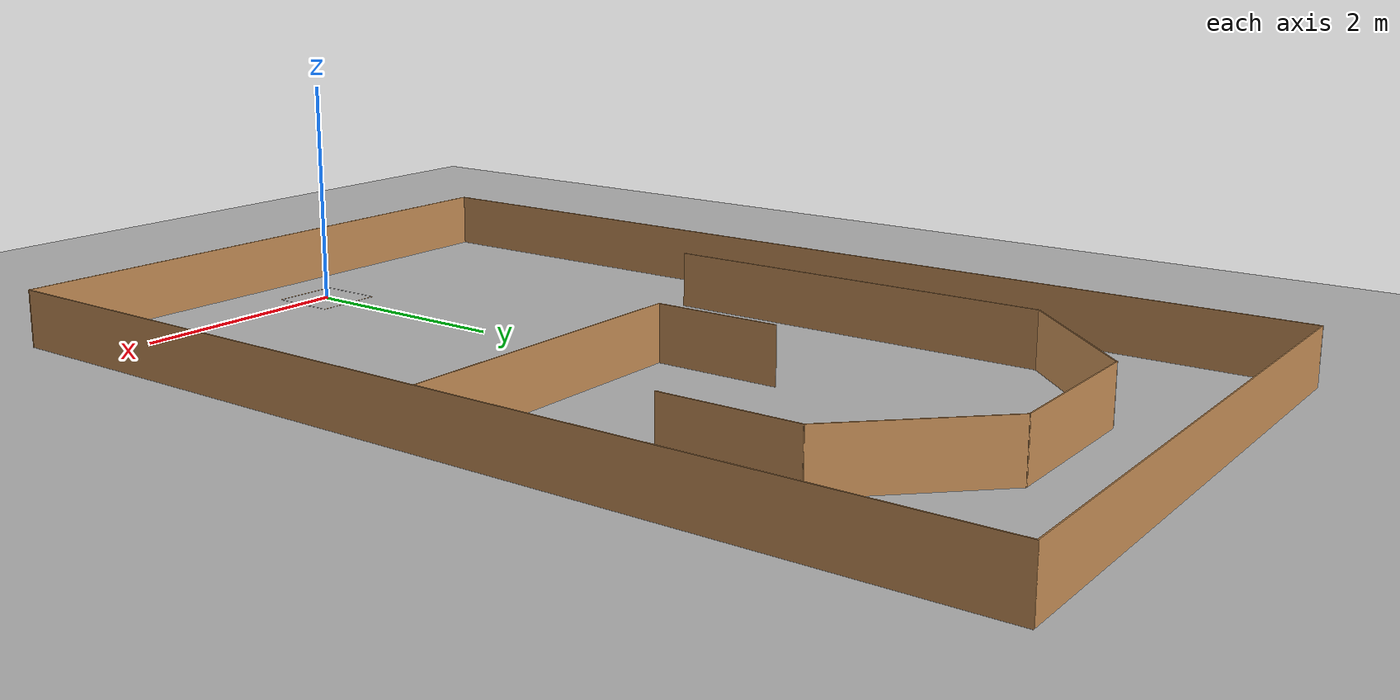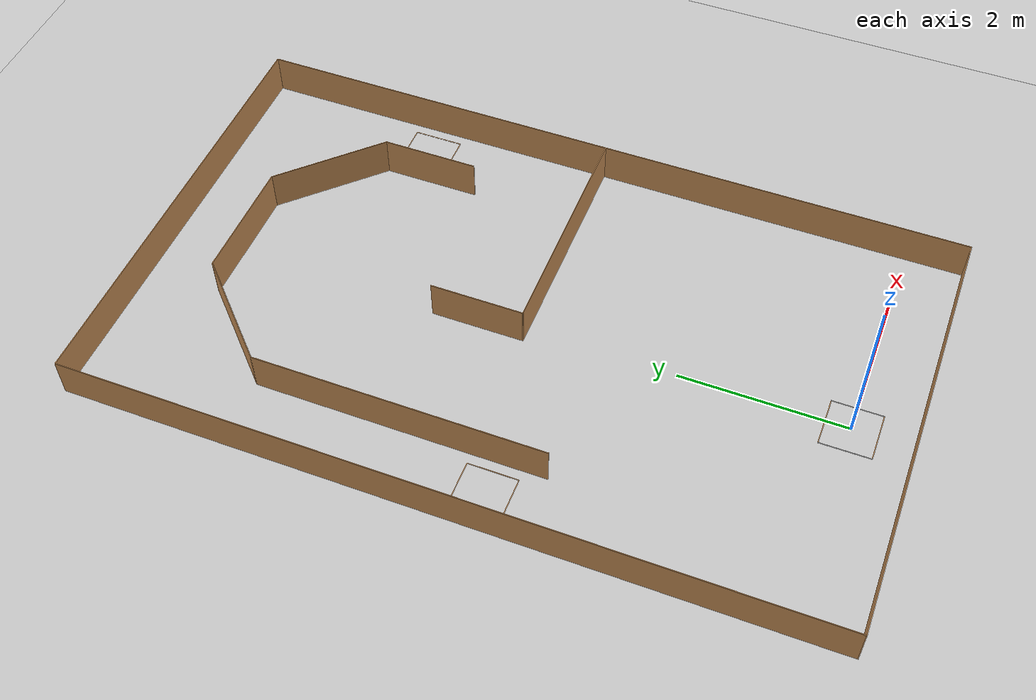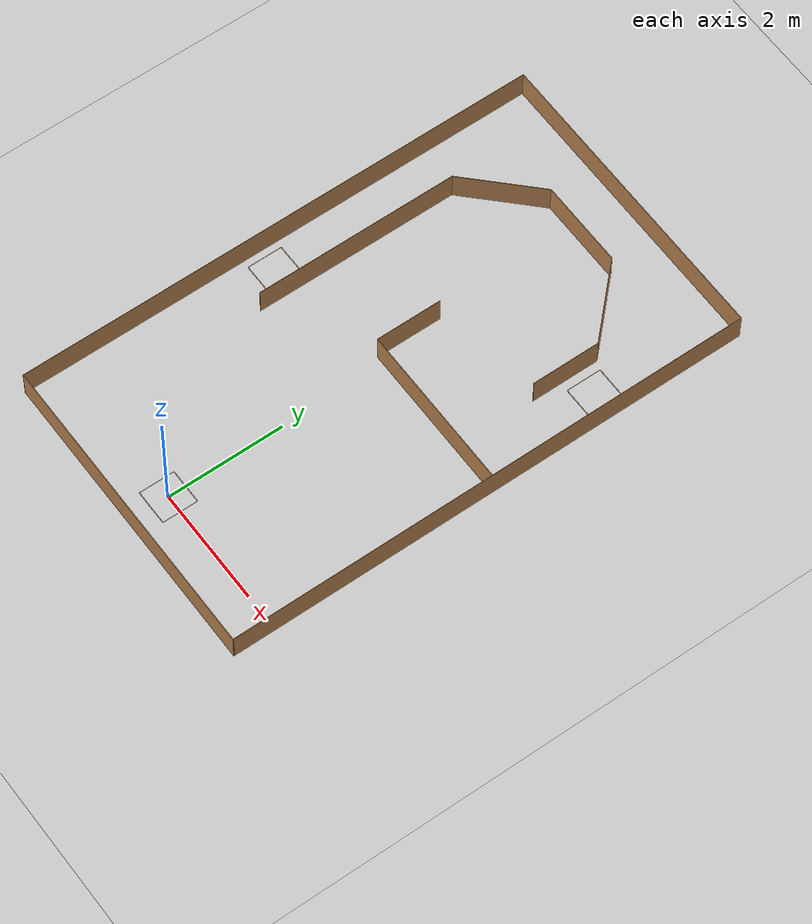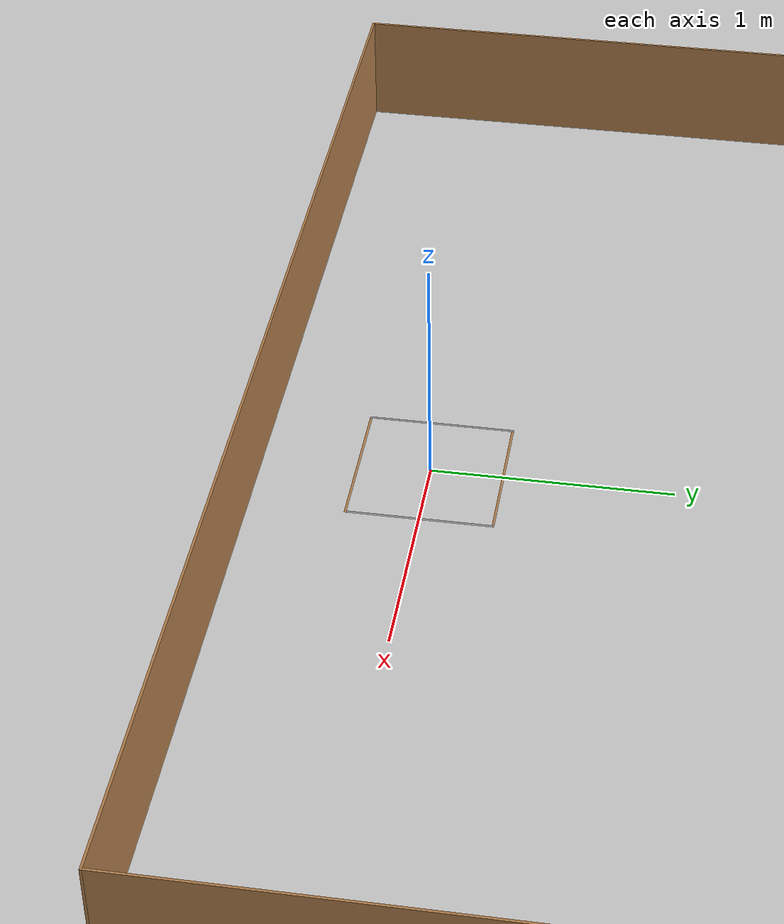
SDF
<sdf version="1.7">
 <world name="default">
  <light name="sun" type="directional">
   <pose>0 0 10 0 -0 0</pose>
   <diffuse>0.8 0.8 0.8 1</diffuse>
   <specular>0.2 0.2 0.2 1</specular>
   <attenuation>
    <range>1000</range>
    <constant>0.9</constant>
    <linear>0.01</linear>
    <quadratic>0.001</quadratic>
   </attenuation>
   <direction>-0.5 0.1 -0.9</direction>
   <spot><inner_angle>0</inner_angle><outer_angle>0</outer_angle><falloff>0</falloff></spot>
  </light>
  <model name="ground_plane">
   <static>1</static>
   <link name="link">
    <collision name="collision">
     <geometry><plane><normal>0 0 1</normal><size>100 100</size></plane></geometry>
     <surface>
      <contact><collide_bitmask>65535</collide_bitmask></contact>
      <friction><ode><mu>100</mu><mu2>50</mu2></ode></friction>
     </surface>
    </collision>
    <visual name="visual">
     <cast_shadows>0</cast_shadows>
     <geometry><plane><normal>0 0 1</normal><size>100 100</size></plane></geometry>
     <material>
      <script><uri>file://media/materials/scripts/gazebo.material</uri><name>Gazebo/Grey</name></script>
     </material>
    </visual>
   </link>
  </model>
  <gravity>0 0 -9.8</gravity>
  <magnetic_field>6e-06 2.3e-05 -4.2e-05</magnetic_field>
  <atmosphere type="adiabatic"/>
  <physics type="ode">
   <max_step_size>0.001</max_step_size>
   <real_time_factor>1</real_time_factor>
   <real_time_update_rate>1000</real_time_update_rate>
  </physics>
  <scene><ambient>0.4 0.4 0.4 1</ambient><background>0.7 0.7 0.7 1</background><shadows>1</shadows></scene>
  <spherical_coordinates>
   <surface_model>EARTH_WGS84</surface_model>
   <latitude_deg>0</latitude_deg>
   <longitude_deg>0</longitude_deg>
   <elevation>0</elevation>
   <heading_deg>0</heading_deg>
  </spherical_coordinates>
  <model name="map_model">
   <pose>0 3.8 0 0 -0 0</pose>
   <link name="Wall_0">
    <collision name="Wall_0_Collision">
     <geometry><box><size>5.31 0.01 0.5</size></box></geometry>
     <pose>0 0 0.25 0 -0 0</pose>
    </collision>
    <visual name="Wall_0_Visual">
     <pose>0 0 0.25 0 -0 0</pose>
     <geometry><box><size>5.31 0.01 0.5</size></box></geometry>
     <material>
      <script><uri>file://media/materials/scripts/gazebo.material</uri><name>Gazebo/Wood</name></script>
      <ambient>1 1 1 1</ambient>
     </material>
     <meta><layer>0</layer></meta>
    </visual>
    <pose>0 -4.5 0 0 -0 0</pose>
   </link>
   <link name="Wall_10">
    <collision name="Wall_10_Collision"><geometry><box><size>0.609814 0.01 0</size></box></geometry></collision>
    <visual name="Wall_10_Visual">
     <geometry><box><size>0.609814 0.01 0</size></box></geometry>
     <material>
      <script><uri>file://media/materials/scripts/gazebo.material</uri><name>Gazebo/Wood</name></script>
      <ambient>1 1 1 1</ambient>
     </material>
     <meta><layer>0</layer></meta>
    </visual>
    <pose>0 -3.5 0 0 -0 0</pose>
   </link>
   <link name="Wall_12">
    <collision name="Wall_12_Collision"><geometry><box><size>0.61 0.01 0</size></box></geometry></collision>
    <visual name="Wall_12_Visual">
     <geometry><box><size>0.61 0.01 0</size></box></geometry>
     <material>
      <script><uri>file://media/materials/scripts/gazebo.material</uri><name>Gazebo/Grey</name></script>
      <ambient>1 1 1 1</ambient>
     </material>
     <meta><layer>0</layer></meta>
    </visual>
    <pose>-0.3 -3.8 0 0 -0 -1.5708</pose>
   </link>
   <link name="Wall_14">
    <collision name="Wall_14_Collision"><geometry><box><size>0.61 0.01 0</size></box></geometry></collision>
    <visual name="Wall_14_Visual">
     <geometry><box><size>0.61 0.01 0</size></box></geometry>
     <material>
      <script><uri>file://media/materials/scripts/gazebo.material</uri><name>Gazebo/Grey</name></script>
      <ambient>1 1 1 1</ambient>
     </material>
     <meta><layer>0</layer></meta>
    </visual>
    <pose>0.3 -3.8 0 0 -0 -1.5708</pose>
   </link>
   <link name="Wall_16">
    <collision name="Wall_16_Collision">
     <geometry><box><size>3.49 0.01 0.5</size></box></geometry>
     <pose>0 0 0.25 0 -0 0</pose>
    </collision>
    <visual name="Wall_16_Visual">
     <pose>0 0 0.25 0 -0 0</pose>
     <geometry><box><size>3.49 0.01 0.5</size></box></geometry>
     <material>
      <script><uri>file://media/materials/scripts/gazebo.material</uri><name>Gazebo/Wood</name></script>
      <ambient>1 1 1 1</ambient>
     </material>
     <meta><layer>0</layer></meta>
    </visual>
    <pose>-1.8 0.813 0 0 -0 1.5708</pose>
   </link>
   <link name="Wall_18">
    <collision name="Wall_18_Collision">
     <geometry><box><size>1.49068 0.01 0.5</size></box></geometry>
     <pose>0 0 0.25 0 -0 0</pose>
    </collision>
    <visual name="Wall_18_Visual">
     <pose>0 0 0.25 0 -0 0</pose>
     <geometry><box><size>1.49068 0.01 0.5</size></box></geometry>
     <material>
      <script><uri>file://media/materials/scripts/gazebo.material</uri><name>Gazebo/Wood</name></script>
      <ambient>1 1 1 1</ambient>
     </material>
     <meta><layer>0</layer></meta>
    </visual>
    <pose>-1.2765 3.0765 0 0 -0 0.785398</pose>
   </link>
   <link name="Wall_2">
    <collision name="Wall_2_Collision">
     <geometry><box><size>9.01 0.01 0.5</size></box></geometry>
     <pose>0 0 0.25 0 -0 0</pose>
    </collision>
    <visual name="Wall_2_Visual">
     <pose>0 0 0.25 0 -0 0</pose>
     <geometry><box><size>9.01 0.01 0.5</size></box></geometry>
     <material>
      <script><uri>file://media/materials/scripts/gazebo.material</uri><name>Gazebo/Wood</name></script>
      <ambient>1 1 1 1</ambient>
     </material>
     <meta><layer>0</layer></meta>
    </visual>
    <pose>-2.65 0 0 0 -0 1.5708</pose>
   </link>
   <link name="Wall_20">
    <collision name="Wall_20_Collision">
     <geometry><box><size>1.49 0.01 0.5</size></box></geometry>
     <pose>0 0 0.25 0 -0 0</pose>
    </collision>
    <visual name="Wall_20_Visual">
     <pose>0 0 0.25 0 -0 0</pose>
     <geometry><box><size>1.49 0.01 0.5</size></box></geometry>
     <material>
      <script><uri>file://media/materials/scripts/gazebo.material</uri><name>Gazebo/Wood</name></script>
      <ambient>1 1 1 1</ambient>
     </material>
     <meta><layer>0</layer></meta>
    </visual>
    <pose>-0.013 3.6 0 0 -0 0</pose>
   </link>
   <link name="Wall_22">
    <collision name="Wall_22_Collision">
     <geometry><box><size>1.49068 0.01 0.5</size></box></geometry>
     <pose>0 0 0.25 0 -0 0</pose>
    </collision>
    <visual name="Wall_22_Visual">
     <pose>0 0 0.25 0 -0 0</pose>
     <geometry><box><size>1.49068 0.01 0.5</size></box></geometry>
     <material>
      <script><uri>file://media/materials/scripts/gazebo.material</uri><name>Gazebo/Wood</name></script>
      <ambient>1 1 1 1</ambient>
     </material>
     <meta><layer>0</layer></meta>
    </visual>
    <pose>1.2505 3.0765 0 0 -0 -0.785398</pose>
   </link>
   <link name="Wall_24">
    <collision name="Wall_24_Collision">
     <geometry><box><size>1.17 0.01 0.5</size></box></geometry>
     <pose>0 0 0.25 0 -0 0</pose>
    </collision>
    <visual name="Wall_24_Visual">
     <pose>0 0 0.25 0 -0 0</pose>
     <geometry><box><size>1.17 0.01 0.5</size></box></geometry>
     <material>
      <script><uri>file://media/materials/scripts/gazebo.material</uri><name>Gazebo/Wood</name></script>
      <ambient>1 1 1 1</ambient>
     </material>
     <meta><layer>0</layer></meta>
    </visual>
    <pose>1.774 1.973 0 0 -0 -1.5708</pose>
   </link>
   <link name="Wall_26">
    <collision name="Wall_26_Collision"><geometry><box><size>0.61 0.01 0</size></box></geometry></collision>
    <visual name="Wall_26_Visual">
     <geometry><box><size>0.61 0.01 0</size></box></geometry>
     <material>
      <script><uri>file://media/materials/scripts/gazebo.material</uri><name>Gazebo/Wood</name></script>
      <ambient>1 1 1 1</ambient>
     </material>
     <meta><layer>0</layer></meta>
    </visual>
    <pose>-2.225 -0.647 0 0 -0 0</pose>
   </link>
   <link name="Wall_28">
    <collision name="Wall_28_Collision"><geometry><box><size>0.61 0.01 0</size></box></geometry></collision>
    <visual name="Wall_28_Visual">
     <geometry><box><size>0.61 0.01 0</size></box></geometry>
     <material>
      <script><uri>file://media/materials/scripts/gazebo.material</uri><name>Gazebo/Wood</name></script>
      <ambient>1 1 1 1</ambient>
     </material>
     <meta><layer>0</layer></meta>
    </visual>
    <pose>-2.225 -0.047 0 0 -0 0</pose>
   </link>
   <link name="Wall_30">
    <collision name="Wall_30_Collision"><geometry><box><size>0.61 0.01 0</size></box></geometry></collision>
    <visual name="Wall_30_Visual">
     <geometry><box><size>0.61 0.01 0</size></box></geometry>
     <material>
      <script><uri>file://media/materials/scripts/gazebo.material</uri><name>Gazebo/Wood</name></script>
      <ambient>1 1 1 1</ambient>
     </material>
     <meta><layer>0</layer></meta>
    </visual>
    <pose>-2.525 -0.347 0 0 -0 -1.5708</pose>
   </link>
   <link name="Wall_32">
    <collision name="Wall_32_Collision"><geometry><box><size>0.61 0.01 0</size></box></geometry></collision>
    <visual name="Wall_32_Visual">
     <geometry><box><size>0.61 0.01 0</size></box></geometry>
     <material>
      <script><uri>file://media/materials/scripts/gazebo.material</uri><name>Gazebo/Wood</name></script>
      <ambient>1 1 1 1</ambient>
     </material>
     <meta><layer>0</layer></meta>
    </visual>
    <pose>-1.925 -0.347 0 0 -0 -1.5708</pose>
   </link>
   <link name="Wall_35">
    <collision name="Wall_35_Collision"><geometry><box><size>0.61 0.01 0</size></box></geometry></collision>
    <visual name="Wall_35_Visual">
     <geometry><box><size>0.61 0.01 0</size></box></geometry>
     <material>
      <script><uri>file://media/materials/scripts/gazebo.material</uri><name>Gazebo/Wood</name></script>
      <ambient>1 1 1 1</ambient>
     </material>
     <meta><layer>0</layer></meta>
    </visual>
    <pose>2.225 2.5 0 0 -0 0</pose>
   </link>
   <link name="Wall_37">
    <collision name="Wall_37_Collision"><geometry><box><size>0.61 0.01 0</size></box></geometry></collision>
    <visual name="Wall_37_Visual">
     <geometry><box><size>0.61 0.01 0</size></box></geometry>
     <material>
      <script><uri>file://media/materials/scripts/gazebo.material</uri><name>Gazebo/Wood</name></script>
      <ambient>1 1 1 1</ambient>
     </material>
     <meta><layer>0</layer></meta>
    </visual>
    <pose>2.225 1.9 0 0 -0 0</pose>
   </link>
   <link name="Wall_39">
    <collision name="Wall_39_Collision"><geometry><box><size>0.61 0.01 0</size></box></geometry></collision>
    <visual name="Wall_39_Visual">
     <geometry><box><size>0.61 0.01 0</size></box></geometry>
     <material>
      <script><uri>file://media/materials/scripts/gazebo.material</uri><name>Gazebo/Wood</name></script>
      <ambient>1 1 1 1</ambient>
     </material>
     <meta><layer>0</layer></meta>
    </visual>
    <pose>1.925 2.2 0 0 -0 -1.5708</pose>
   </link>
   <link name="Wall_4">
    <collision name="Wall_4_Collision">
     <geometry><box><size>5.31 0.01 0.5</size></box></geometry>
     <pose>0 0 0.25 0 -0 0</pose>
    </collision>
    <visual name="Wall_4_Visual">
     <pose>0 0 0.25 0 -0 0</pose>
     <geometry><box><size>5.31 0.01 0.5</size></box></geometry>
     <material>
      <script><uri>file://media/materials/scripts/gazebo.material</uri><name>Gazebo/Wood</name></script>
      <ambient>1 1 1 1</ambient>
     </material>
     <meta><layer>0</layer></meta>
    </visual>
    <pose>0 4.5 0 0 -0 0</pose>
   </link>
   <link name="Wall_41">
    <collision name="Wall_41_Collision"><geometry><box><size>0.61 0.01 0</size></box></geometry></collision>
    <visual name="Wall_41_Visual">
     <geometry><box><size>0.61 0.01 0</size></box></geometry>
     <material>
      <script><uri>file://media/materials/scripts/gazebo.material</uri><name>Gazebo/Wood</name></script>
      <ambient>1 1 1 1</ambient>
     </material>
     <meta><layer>0</layer></meta>
    </visual>
    <pose>2.525 2.2 0 0 -0 -1.5708</pose>
   </link>
   <link name="Wall_43">
    <collision name="Wall_43_Collision">
     <geometry><box><size>2.81 0.01 0.5</size></box></geometry>
     <pose>0 0 0.25 0 -0 0</pose>
    </collision>
    <visual name="Wall_43_Visual">
     <pose>0 0 0.25 0 -0 0</pose>
     <geometry><box><size>2.81 0.01 0.5</size></box></geometry>
     <material>
      <script><uri>file://media/materials/scripts/gazebo.material</uri><name>Gazebo/Wood</name></script>
      <ambient>1 1 1 1</ambient>
     </material>
     <meta><layer>0</layer></meta>
    </visual>
    <pose>1.25 0 0 0 -0 0</pose>
   </link>
   <link name="Wall_45">
    <collision name="Wall_45_Collision">
     <geometry><box><size>1.13 0.01 0.5</size></box></geometry>
     <pose>0 0 0.25 0 -0 0</pose>
    </collision>
    <visual name="Wall_45_Visual">
     <pose>0 0 0.25 0 -0 0</pose>
     <geometry><box><size>1.13 0.01 0.5</size></box></geometry>
     <material>
      <script><uri>file://media/materials/scripts/gazebo.material</uri><name>Gazebo/Wood</name></script>
      <ambient>1 1 1 1</ambient>
     </material>
     <meta><layer>0</layer></meta>
    </visual>
    <pose>-0.15 0.56 0 0 -0 1.5708</pose>
   </link>
   <link name="Wall_6">
    <collision name="Wall_6_Collision">
     <geometry><box><size>9.01 0.01 0.5</size></box></geometry>
     <pose>0 0 0.25 0 -0 0</pose>
    </collision>
    <visual name="Wall_6_Visual">
     <pose>0 0 0.25 0 -0 0</pose>
     <geometry><box><size>9.01 0.01 0.5</size></box></geometry>
     <material>
      <script><uri>file://media/materials/scripts/gazebo.material</uri><name>Gazebo/Wood</name></script>
      <ambient>1 1 1 1</ambient>
     </material>
     <meta><layer>0</layer></meta>
    </visual>
    <pose>2.65 0 0 0 -0 -1.5708</pose>
   </link>
   <link name="Wall_8">
    <collision name="Wall_8_Collision"><geometry><box><size>0.61 0.01 0</size></box></geometry></collision>
    <visual name="Wall_8_Visual">
     <geometry><box><size>0.61 0.01 0</size></box></geometry>
     <material>
      <script><uri>file://media/materials/scripts/gazebo.material</uri><name>Gazebo/Wood</name></script>
      <ambient>1 1 1 1</ambient>
     </material>
     <meta><layer>0</layer></meta>
    </visual>
    <pose>0 -4.1 0 0 -0 0</pose>
   </link>
   <static>1</static>
  </model>
 </world>
</sdf>
